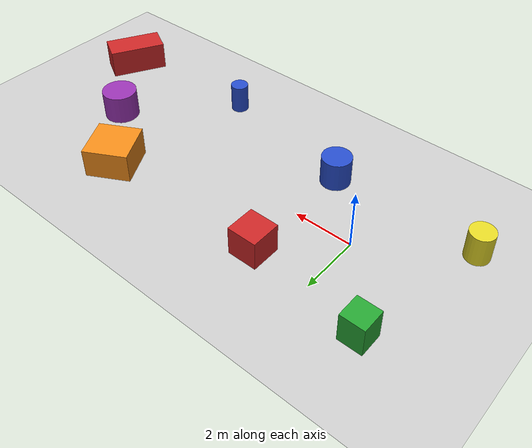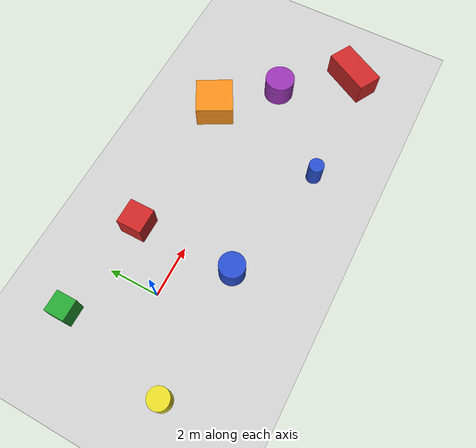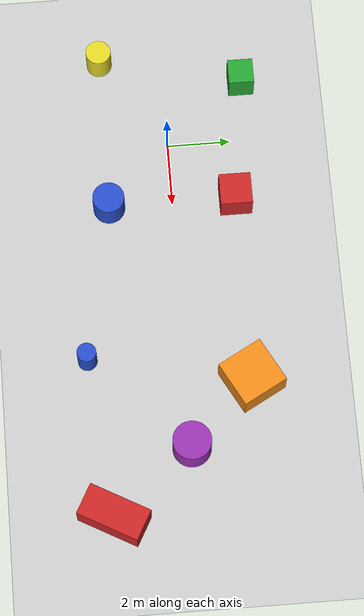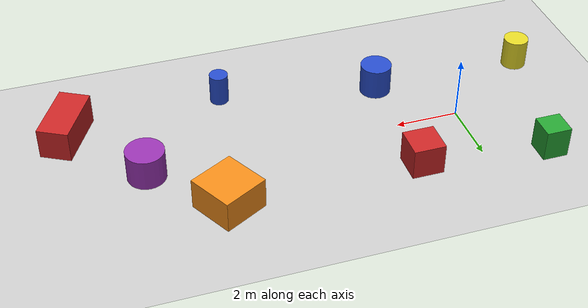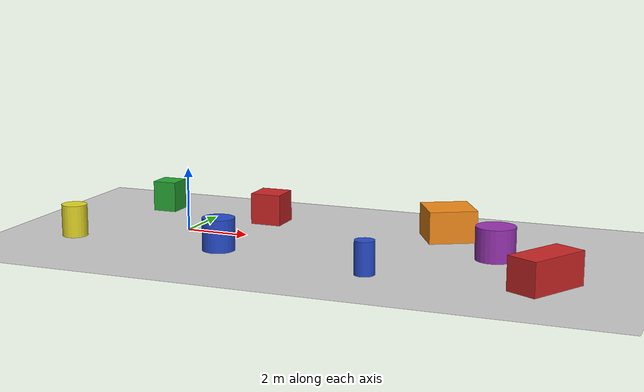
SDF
<?xml version="1.0"?>
<sdf version="1.6">
  <world name="test_obstacles_world">
    <!-- Global light source -->
    <include>
      <uri>model://sun</uri>
    </include>

    <!-- A ground plane -->
    <include>
      <uri>model://ground_plane</uri>
    </include>

    <!-- Physics settings -->
    <physics type="ode">
      <max_step_size>0.001</max_step_size>
      <real_time_factor>1</real_time_factor>
      <real_time_update_rate>1000</real_time_update_rate>
    </physics>

    <!-- ================== OBSTACLES: ROOM 1 ================== -->
    <!-- Room 1 Center is 0,0 -->
    <model name="r1_box1">
      <pose>2.0 2.0 0.5 0 0 0</pose>
      <link name="link">
        <collision name="collision"><geometry><box><size>1 1 1</size></box></geometry></collision>
        <visual name="visual"><geometry><box><size>1 1 1</size></box></geometry><material><script><uri>file://media/materials/scripts/gazebo.material</uri><name>Gazebo/Red</name></script></material></visual>
      </link>
    </model>

    <model name="r1_cyl1">
      <pose>2.0 -2.0 0.5 0 0 0</pose>
      <link name="link">
        <collision name="collision"><geometry><cylinder><radius>0.5</radius><length>1.0</length></cylinder></geometry></collision>
        <visual name="visual"><geometry><cylinder><radius>0.5</radius><length>1.0</length></cylinder></geometry><material><script><uri>file://media/materials/scripts/gazebo.material</uri><name>Gazebo/Blue</name></script></material></visual>
      </link>
    </model>

    <model name="r1_box2">
      <pose>-2.0 2.5 0.5 0 0 0</pose>
      <link name="link">
        <collision name="collision"><geometry><box><size>0.8 0.8 1</size></box></geometry></collision>
        <visual name="visual"><geometry><box><size>0.8 0.8 1</size></box></geometry><material><script><uri>file://media/materials/scripts/gazebo.material</uri><name>Gazebo/Green</name></script></material></visual>
      </link>
    </model>

    <model name="r1_cyl2">
      <pose>-3.0 -2.0 0.5 0 0 0</pose>
      <link name="link">
        <collision name="collision"><geometry><cylinder><radius>0.4</radius><length>1.0</length></cylinder></geometry></collision>
        <visual name="visual"><geometry><cylinder><radius>0.4</radius><length>1.0</length></cylinder></geometry><material><script><uri>file://media/materials/scripts/gazebo.material</uri><name>Gazebo/Yellow</name></script></material></visual>
      </link>
    </model>

    <!-- ================== OBSTACLES: ROOM 2 ================== -->
    <!-- Room 2 Center is 10,0 -->
    <model name="r2_box1">
      <pose>8.0 2.0 0.5 0 0 0.5</pose>
      <link name="link">
        <collision name="collision"><geometry><box><size>1.5 1.5 1</size></box></geometry></collision>
        <visual name="visual"><geometry><box><size>1.5 1.5 1</size></box></geometry><material><script><uri>file://media/materials/scripts/gazebo.material</uri><name>Gazebo/Orange</name></script></material></visual>
      </link>
    </model>

    <model name="r2_cyl1">
      <pose>10.0 0.0 0.5 0 0 0</pose>
      <link name="link">
        <collision name="collision"><geometry><cylinder><radius>0.6</radius><length>1.0</length></cylinder></geometry></collision>
        <visual name="visual"><geometry><cylinder><radius>0.6</radius><length>1.0</length></cylinder></geometry><material><script><uri>file://media/materials/scripts/gazebo.material</uri><name>Gazebo/Purple</name></script></material></visual>
      </link>
    </model>

    <model name="r2_box2">
      <pose>12.0 -2.5 0.5 0 0 -0.5</pose>
      <link name="link">
        <collision name="collision"><geometry><box><size>1 2 1</size></box></geometry></collision>
        <visual name="visual"><geometry><box><size>1 2 1</size></box></geometry><material><script><uri>file://media/materials/scripts/gazebo.material</uri><name>Gazebo/Red</name></script></material></visual>
      </link>
    </model>

    <model name="r2_cyl2">
      <pose>7.0 -3.0 0.5 0 0 0</pose>
      <link name="link">
        <collision name="collision"><geometry><cylinder><radius>0.3</radius><length>1.0</length></cylinder></geometry></collision>
        <visual name="visual"><geometry><cylinder><radius>0.3</radius><length>1.0</length></cylinder></geometry><material><script><uri>file://media/materials/scripts/gazebo.material</uri><name>Gazebo/Blue</name></script></material></visual>
      </link>
    </model>

  </world>
</sdf>
